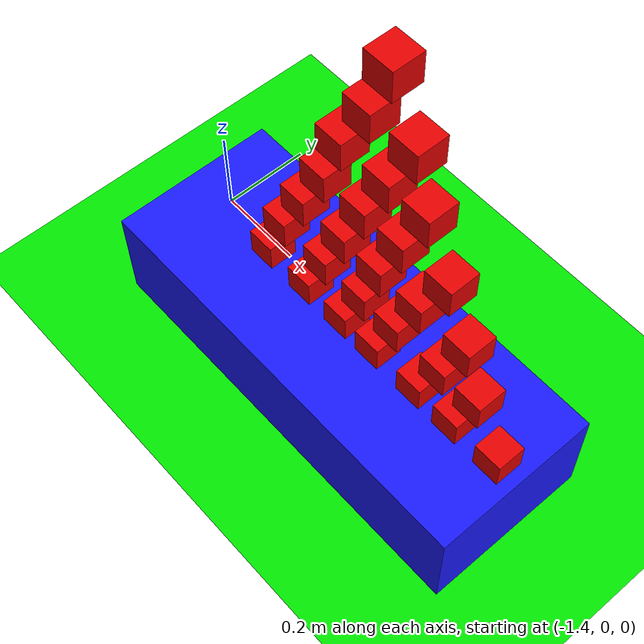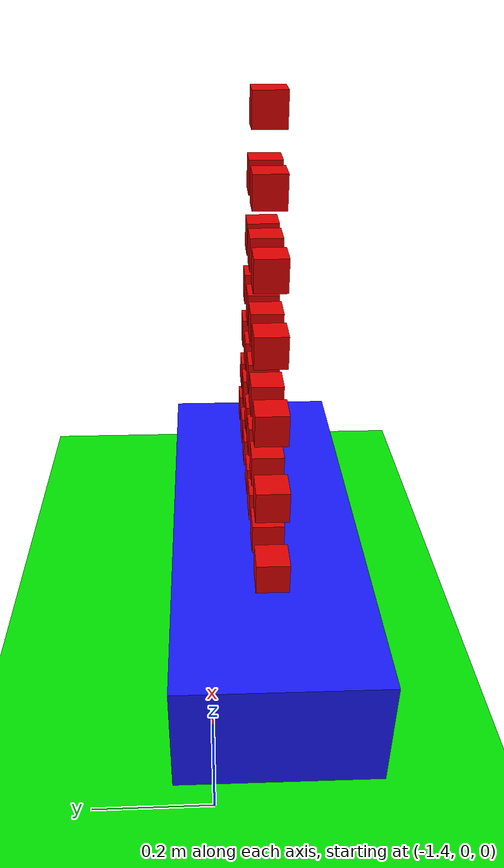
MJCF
<mujoco>
	<worldbody>
		<light diffuse=".5 .5 .5" pos="0 0 3" dir="0 0 -1" />
        <geom type="plane" size="20 20 0.1" friction = "3 3 .05" rgba="0 .9 0 1" />
		<body pos="-0.9 -0.11 0.11">
			<geom type="box" size="0.4600000000000001 0.18 0.11" rgba="0.1 0.1 1 1"/>
		</body>
		<body pos="-0.49600000000000005 -0.11 0.25">
			<joint type="free"/>
			<geom type="box" solimp=".999 .999 .0001" solref=".0001 1" size="0.03 0.03 0.03" rgba="0.9 0 0 1"/>
		</body>
		<body pos="-0.601 -0.11 0.25">
			<joint type="free"/>
			<geom type="box" solimp=".999 .999 .0001" solref=".0001 1" size="0.03 0.03 0.03" rgba="0.9 0 0 1"/>
		</body>
		<body pos="-0.6950000000000001 -0.11 0.25">
			<joint type="free"/>
			<geom type="box" solimp=".999 .999 .0001" solref=".0001 1" size="0.03 0.03 0.03" rgba="0.9 0 0 1"/>
		</body>
		<body pos="-0.806 -0.11 0.25">
			<joint type="free"/>
			<geom type="box" solimp=".999 .999 .0001" solref=".0001 1" size="0.03 0.03 0.03" rgba="0.9 0 0 1"/>
		</body>
		<body pos="-0.893 -0.11 0.25">
			<joint type="free"/>
			<geom type="box" solimp=".999 .999 .0001" solref=".0001 1" size="0.03 0.03 0.03" rgba="0.9 0 0 1"/>
		</body>
		<body pos="-0.9949999999999999 -0.11 0.25">
			<joint type="free"/>
			<geom type="box" solimp=".999 .999 .0001" solref=".0001 1" size="0.03 0.03 0.03" rgba="0.9 0 0 1"/>
		</body>
		<body pos="-1.1059999999999999 -0.11 0.25">
			<joint type="free"/>
			<geom type="box" solimp=".999 .999 .0001" solref=".0001 1" size="0.03 0.03 0.03" rgba="0.9 0 0 1"/>
		</body>
		<body pos="-0.5589999999999999 -0.11 0.37">
			<joint type="free"/>
			<geom type="box" solimp=".999 .999 .0001" solref=".0001 1" size="0.03 0.03 0.03" rgba="0.9 0 0 1"/>
		</body>
		<body pos="-0.643 -0.11 0.37">
			<joint type="free"/>
			<geom type="box" solimp=".999 .999 .0001" solref=".0001 1" size="0.03 0.03 0.03" rgba="0.9 0 0 1"/>
		</body>
		<body pos="-0.7589999999999999 -0.11 0.37">
			<joint type="free"/>
			<geom type="box" solimp=".999 .999 .0001" solref=".0001 1" size="0.03 0.03 0.03" rgba="0.9 0 0 1"/>
		</body>
		<body pos="-0.843 -0.11 0.37">
			<joint type="free"/>
			<geom type="box" solimp=".999 .999 .0001" solref=".0001 1" size="0.03 0.03 0.03" rgba="0.9 0 0 1"/>
		</body>
		<body pos="-0.946 -0.11 0.37">
			<joint type="free"/>
			<geom type="box" solimp=".999 .999 .0001" solref=".0001 1" size="0.03 0.03 0.03" rgba="0.9 0 0 1"/>
		</body>
		<body pos="-1.059 -0.11 0.37">
			<joint type="free"/>
			<geom type="box" solimp=".999 .999 .0001" solref=".0001 1" size="0.03 0.03 0.03" rgba="0.9 0 0 1"/>
		</body>
		<body pos="-0.5979999999999999 -0.11 0.49">
			<joint type="free"/>
			<geom type="box" solimp=".999 .999 .0001" solref=".0001 1" size="0.03 0.03 0.03" rgba="0.9 0 0 1"/>
		</body>
		<body pos="-0.7090000000000001 -0.11 0.49">
			<joint type="free"/>
			<geom type="box" solimp=".999 .999 .0001" solref=".0001 1" size="0.03 0.03 0.03" rgba="0.9 0 0 1"/>
		</body>
		<body pos="-0.806 -0.11 0.49">
			<joint type="free"/>
			<geom type="box" solimp=".999 .999 .0001" solref=".0001 1" size="0.03 0.03 0.03" rgba="0.9 0 0 1"/>
		</body>
		<body pos="-0.8959999999999999 -0.11 0.49">
			<joint type="free"/>
			<geom type="box" solimp=".999 .999 .0001" solref=".0001 1" size="0.03 0.03 0.03" rgba="0.9 0 0 1"/>
		</body>
		<body pos="-1.002 -0.11 0.49">
			<joint type="free"/>
			<geom type="box" solimp=".999 .999 .0001" solref=".0001 1" size="0.03 0.03 0.03" rgba="0.9 0 0 1"/>
		</body>
		<body pos="-0.651 -0.11 0.61">
			<joint type="free"/>
			<geom type="box" solimp=".999 .999 .0001" solref=".0001 1" size="0.03 0.03 0.03" rgba="0.9 0 0 1"/>
		</body>
		<body pos="-0.7589999999999999 -0.11 0.61">
			<joint type="free"/>
			<geom type="box" solimp=".999 .999 .0001" solref=".0001 1" size="0.03 0.03 0.03" rgba="0.9 0 0 1"/>
		</body>
		<body pos="-0.8479999999999999 -0.11 0.61">
			<joint type="free"/>
			<geom type="box" solimp=".999 .999 .0001" solref=".0001 1" size="0.03 0.03 0.03" rgba="0.9 0 0 1"/>
		</body>
		<body pos="-0.946 -0.11 0.61">
			<joint type="free"/>
			<geom type="box" solimp=".999 .999 .0001" solref=".0001 1" size="0.03 0.03 0.03" rgba="0.9 0 0 1"/>
		</body>
		<body pos="-0.7090000000000001 -0.11 0.73">
			<joint type="free"/>
			<geom type="box" solimp=".999 .999 .0001" solref=".0001 1" size="0.03 0.03 0.03" rgba="0.9 0 0 1"/>
		</body>
		<body pos="-0.796 -0.11 0.73">
			<joint type="free"/>
			<geom type="box" solimp=".999 .999 .0001" solref=".0001 1" size="0.03 0.03 0.03" rgba="0.9 0 0 1"/>
		</body>
		<body pos="-0.9039999999999999 -0.11 0.73">
			<joint type="free"/>
			<geom type="box" solimp=".999 .999 .0001" solref=".0001 1" size="0.03 0.03 0.03" rgba="0.9 0 0 1"/>
		</body>
		<body pos="-0.742 -0.11 0.85">
			<joint type="free"/>
			<geom type="box" solimp=".999 .999 .0001" solref=".0001 1" size="0.03 0.03 0.03" rgba="0.9 0 0 1"/>
		</body>
		<body pos="-0.841 -0.11 0.85">
			<joint type="free"/>
			<geom type="box" solimp=".999 .999 .0001" solref=".0001 1" size="0.03 0.03 0.03" rgba="0.9 0 0 1"/>
		</body>
		<body pos="-0.7989999999999999 -0.11 0.97">
			<joint type="free"/>
			<geom type="box" solimp=".999 .999 .0001" solref=".0001 1" size="0.03 0.03 0.03" rgba="0.9 0 0 1"/>
		</body>
	</worldbody>
</mujoco>
